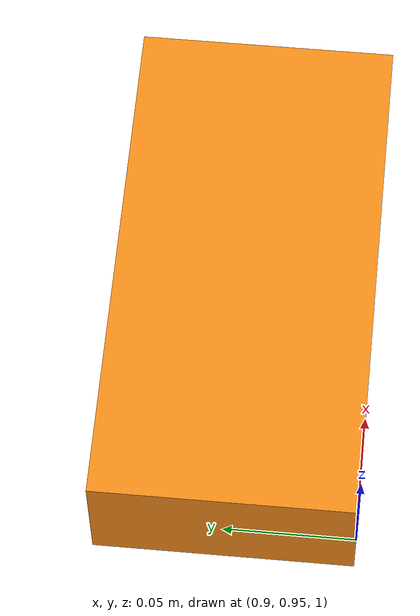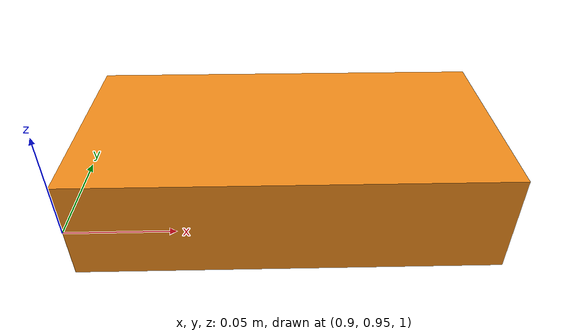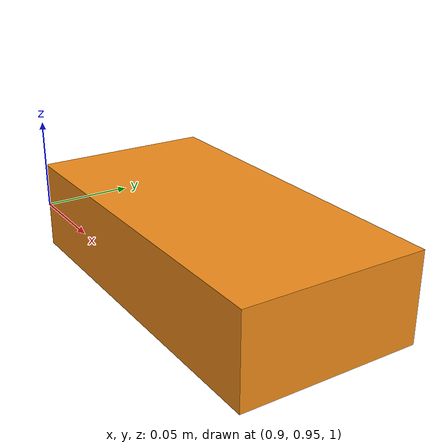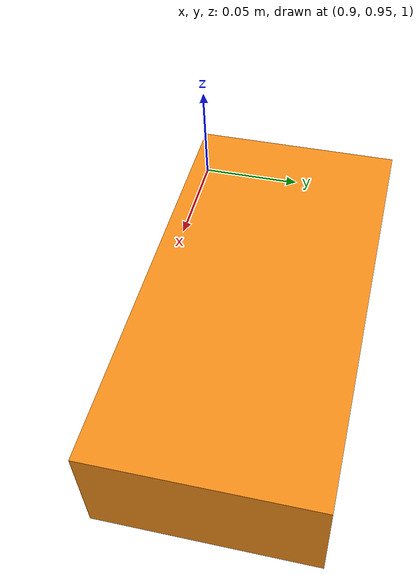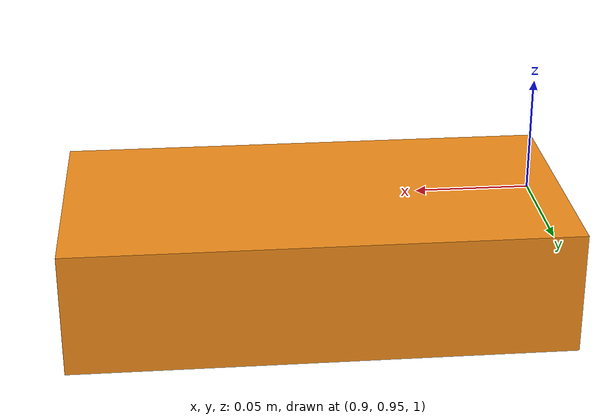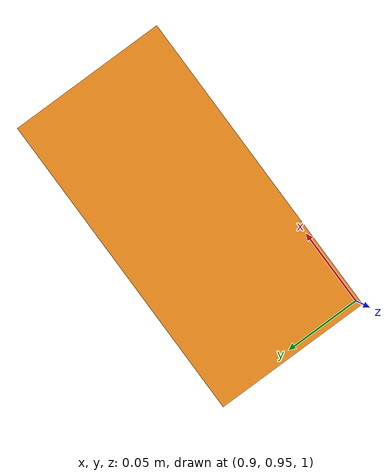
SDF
<?xml version="1.0" ?>
<sdf version="1.6">
  <world name="line_follower_world">
    <include>
      <uri>model://ground_plane</uri>
    </include>
    <include>
      <uri>model://sun</uri>
    </include>

    <!-- Add a black line -->
    <model name="line">
      <static>true</static>
      <link name="line_link">
        <visual name="line_visual">
          <geometry>
            <box>
              <size>5 0.1 0.01</size>
            </box>
          </geometry>
          <material>
            <script>
              <uri>file://media/materials/scripts/gazebo.material</uri>
              <name>Gazebo/Green</name>
            </script>
          </material>
        </visual>
      </link>
      </model>
  <include>
      <uri>model://line_follow</uri>
      <pose>1 1 1 0 0 0</pose> <!-- Optional: Set position and orientation -->
    </include>

  </world>
</sdf>

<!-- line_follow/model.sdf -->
<sdf version="1.6">
  <model name="line_follower_robot">
    <!-- Static property -->
    <static>false</static>

    <!-- Base Link -->
    <link name="base_link">
      <!-- Visual for the base -->
      <visual name="base_visual">
        <geometry>
          <box>
            <size>0.2 0.1 0.05</size> <!-- Length, width, height -->
          </box>
        </geometry>
        <material>
          <script>
            <uri>file://media/materials/scripts/gazebo.material</uri>
            <name>Gazebo/Orange</name>
          </script>
        </material>
      </visual>

      <!-- Collision for the base -->
      <collision name="base_collision">
        <geometry>
          <box>
            <size>0.2 0.1 0.05</size>
          </box>
        </geometry>
      </collision>

      <!-- Inertial properties -->
      <inertial>
        <mass>1.0</mass>
        <inertia>
          <ixx>0.001</ixx>
          <iyy>0.001</iyy>
          <izz>0.001</izz>
          <ixy>0.0</ixy>
          <ixz>0.0</ixz>
          <iyz>0.0</iyz>
        </inertia>
      </inertial>
    </link>

    <!-- Left Wheel -->
    <link name="wheel_left">
      <visual name="left_wheel_visual">
        <geometry>
          <cylinder>
            <radius>0.02</radius>
            <length>0.01</length>
          </cylinder>
        </geometry>
        <material>
          <script>
            <uri>file://media/materials/scripts/gazebo.material</uri>
            <name>Gazebo/Black</name>
          </script>
        </material>
      </visual>
      <collision name="left_wheel_collision">
        <geometry>
          <cylinder>
            <radius>0.02</radius>
            <length>0.01</length>
          </cylinder>
        </geometry>
      </collision>
      <inertial>
        <mass>0.1</mass>
        <inertia>
          <ixx>0.0001</ixx>
          <iyy>0.0001</iyy>
          <izz>0.0001</izz>
          <ixy>0.0</ixy>
          <ixz>0.0</ixz>
          <iyz>0.0</iyz>
        </inertia>
      </inertial>
    </link>

    <!-- Right Wheel -->
    <link name="wheel_right">
      <visual name="right_wheel_visual">
        <geometry>
          <cylinder>
            <radius>0.02</radius>
            <length>0.01</length>
          </cylinder>
        </geometry>
        <material>
          <script>
            <uri>file://media/materials/scripts/gazebo.material</uri>
            <name>Gazebo/Black</name>
          </script>
        </material>
      </visual>
      <collision name="right_wheel_collision">
        <geometry>
          <cylinder>
            <radius>0.02</radius>
            <length>0.01</length>
          </cylinder>
        </geometry>
      </collision>
      <inertial>
        <mass>0.1</mass>
        <inertia>
          <ixx>0.0001</ixx>
          <iyy>0.0001</iyy>
          <izz>0.0001</izz>
          <ixy>0.0</ixy>
          <ixz>0.0</ixz>
          <iyz>0.0</iyz>
        </inertia>
      </inertial>
    </link>

    <!-- Line Sensor -->
    <link name="line_sensor">
      <visual name="sensor_visual">
        <geometry>
          <box>
            <size>0.05 0.02 0.02</size>
          </box>
        </geometry>
        <material>
          <script>
            <uri>file://media/materials/scripts/gazebo.material</uri>
            <name>Gazebo/Gray</name>
          </script>
        </material>
      </visual>
      <collision name="sensor_collision">
        <geometry>
          <box>
            <size>0.05 0.02 0.02</size>
          </box>
        </geometry>
      </collision>
      <inertial>
        <mass>0.05</mass>
        <inertia>
          <ixx>0.00005</ixx>
          <iyy>0.00005</iyy>
          <izz>0.00005</izz>
          <ixy>0.0</ixy>
          <ixz>0.0</ixz>
          <iyz>0.0</iyz>
        </inertia>
      </inertial>
    </link>

    <!-- Joints -->
    <joint name="left_wheel_joint" type="revolute">
      <parent>base_link</parent>
      <child>wheel_left</child>
      <axis>
        <xyz>0 1 0</xyz>
        <limit>
          <lower>-1.0</lower>
          <upper>1.0</upper>
        </limit>
      </axis>
    </joint>

    <joint name="right_wheel_joint" type="revolute">
      <parent>base_link</parent>
      <child>wheel_right</child>
      <axis>
        <xyz>0 1 0</xyz>
        <limit>
          <lower>-1.0</lower>
          <upper>1.0</upper>
        </limit>
      </axis>
    </joint>

    <joint name="sensor_joint" type="fixed">
      <parent>base_link</parent>
      <child>line_sensor</child>
    </joint>
  </model>
</sdf>
